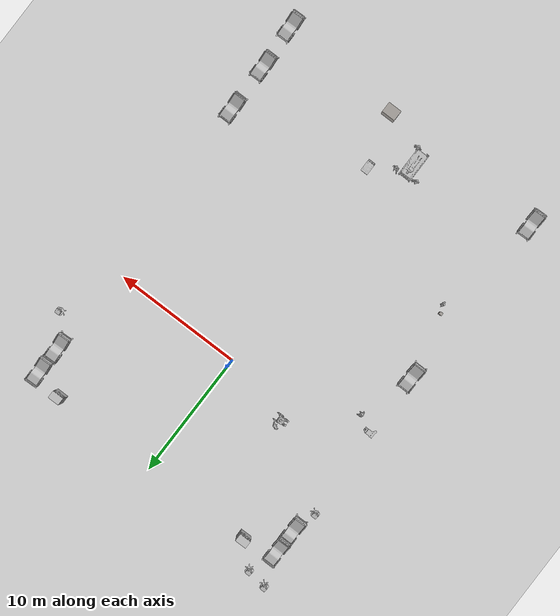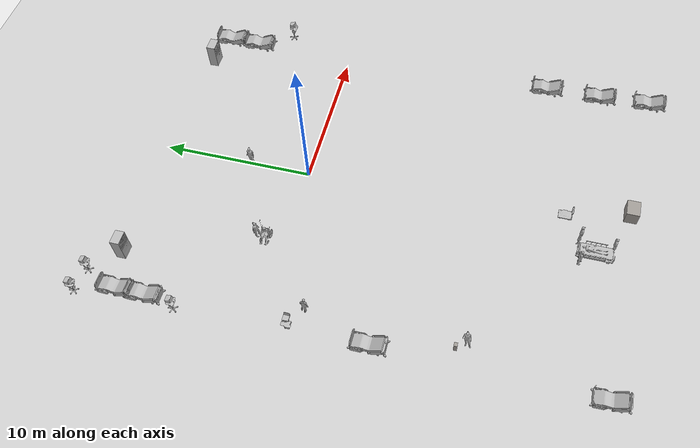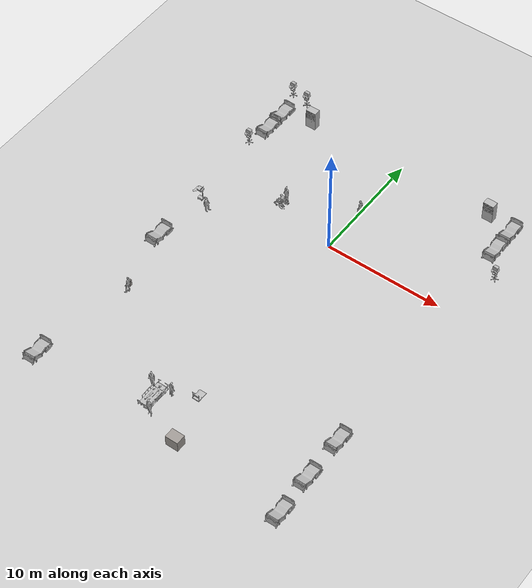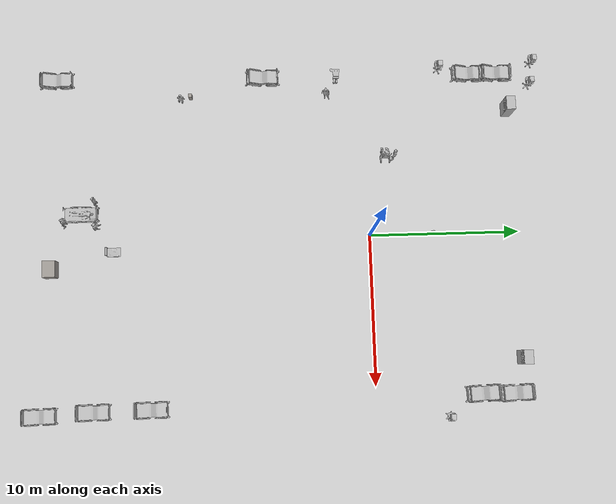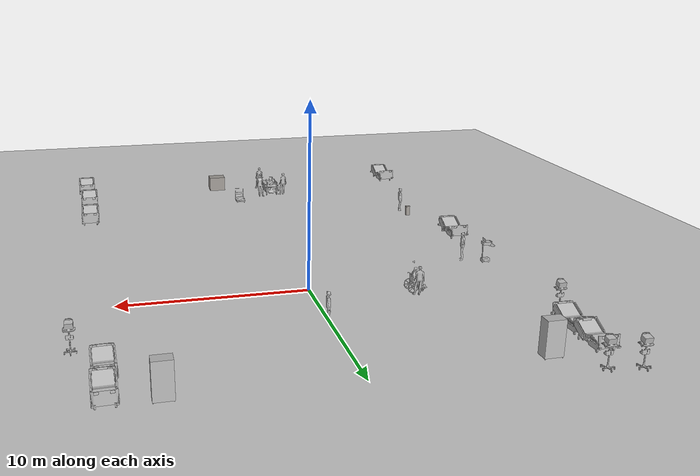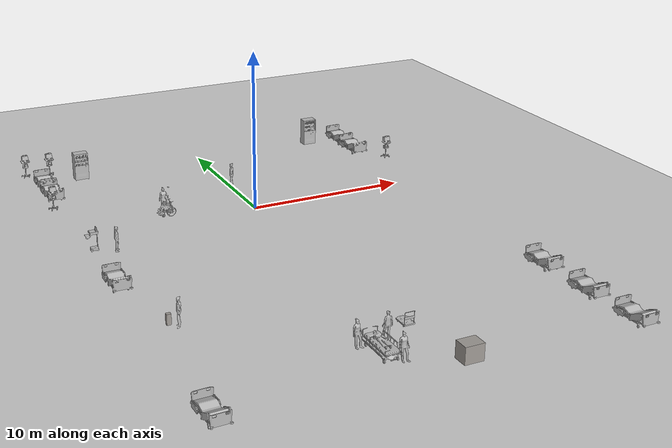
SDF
<sdf version="1.8">
 <world name="normal_hospital">
  <plugin filename="ignition-gazebo-physics-system" name="ignition::gazebo::systems::Physics"/>
  <plugin filename="ignition-gazebo-user-commands-system" name="ignition::gazebo::systems::UserCommands"/>
  <plugin filename="ignition-gazebo-scene-broadcaster-system" name="ignition::gazebo::systems::SceneBroadcaster"/>
  <plugin filename="ignition-gazebo-imu-system" name="ignition::gazebo::systems::Imu"/>
  <plugin filename="ignition-gazebo-magnetometer-system" name="ignition::gazebo::systems::Magnetometer"/>
  <plugin filename="ignition-gazebo-sensors-system" name="ignition::gazebo::systems::Sensors">
   <render_engine>ogre2</render_engine>
  </plugin>
  <gravity>0 0 -9.8</gravity>
  <physics default="0" name="default_physics" type="ode">
   <max_step_size>0.001</max_step_size>
   <real_time_factor>1</real_time_factor>
   <real_time_update_rate>1000</real_time_update_rate>
  </physics>
  <scene>
   <ambient>0.85 0.85 0.85 1</ambient>
   <background>0.55 0.55 0.55 1</background>
   <shadows>false</shadows>
  </scene>
  <include><uri>model://sun</uri></include>
  <include><uri>model://ground_plane</uri><pose>0 0 -0.1 0 -0 0</pose></include>
  <include>
   <uri>model://CGMClassic</uri>
   <name>CGMClassic_1</name>
   <static>true</static>
   <pose>11.1777 -18.4129 0 0 0 -3.13719</pose>
  </include>
  <include>
   <uri>model://CGMClassic</uri>
   <name>CGMClassic_2</name>
   <static>true</static>
   <pose>11.1179 -14.6493 0 0 0 -3.13599</pose>
  </include>
  <include>
   <uri>model://Scrubs</uri>
   <name>Scrubs_1</name>
   <static>true</static>
   <pose>-9.61916 -12.5112 0 0 0 -3.12353</pose>
  </include>
  <include>
   <uri>model://Scrubs</uri>
   <name>Scrubs_2</name>
   <static>true</static>
   <pose>0.054597 4.05849 0 0 -0 3.12413</pose>
  </include>
  <include>
   <uri>model://PatientWheelChair</uri>
   <name>PatientWheelChair_1</name>
   <static>true</static>
   <pose>-5.46091 1.23577 0 0 0 -1.54828</pose>
  </include>
  <include>
   <uri>model://Scrubs</uri>
   <name>Scrubs_3</name>
   <static>true</static>
   <pose>-5.38513 1.82526 0 0 0 -1.63757</pose>
  </include>
  <include>
   <uri>model://CGMClassic</uri>
   <name>CGMClassic_3</name>
   <static>true</static>
   <pose>-11.2304 -21.1134 0 0 0 -3.11834</pose>
  </include>
  <include>
   <uri>model://CGMClassic</uri>
   <name>CGMClassic_4</name>
   <static>true</static>
   <pose>-11.0878 -7.00992 0 0 -0 3.1351</pose>
  </include>
  <include>
   <uri>model://CGMClassic</uri>
   <name>CGMClassic_5</name>
   <static>true</static>
   <pose>-11.0106 8.9505 -0.008203 -0.035019 -0.000392 3.13388</pose>
  </include>
  <include>
   <uri>model://CGMClassic</uri>
   <name>CGMClassic_6</name>
   <static>true</static>
   <pose>-11.025 7.10335 0 -0.035021 1.8e-05 -3.13762</pose>
  </include>
  <include>
   <uri>model://TrolleyBedPatient</uri>
   <name>TrolleyBedPatient_1</name>
   <static>true</static>
   <pose>-1.83202 -19.2612 0 0 -0 0</pose>
  </include>
  <include>
   <uri>model://Scrubs</uri>
   <name>Scrubs_4</name>
   <static>true</static>
   <pose>-0.93616 -18.2252 0 0 -0 1.62572</pose>
  </include>
  <include>
   <uri>model://Scrubs</uri>
   <name>Scrubs_5</name>
   <static>true</static>
   <pose>-2.66657 -18.3733 0 -0.002221 -0.006608 -1.24025</pose>
  </include>
  <include>
   <uri>model://CGMClassic</uri>
   <name>CGMClassic_7</name>
   <static>true</static>
   <pose>10.6166 9.06291 -0.008203 -0.03501 0.000885 -3.11285</pose>
  </include>
  <include>
   <uri>model://CGMClassic</uri>
   <name>CGMClassic_8</name>
   <static>true</static>
   <pose>10.6006 6.90956 -0.008203 -0.035003 0.001133 -3.10576</pose>
  </include>
  <include>
   <uri>model://ParkingTrolleyMin</uri>
   <name>ParkingTrolleyMin_1</name>
   <static>true</static>
   <pose>0.715846 -17.1496 -0.000121 -1e-06 -0 0</pose>
  </include>
  <include>
   <uri>model://Scrubs</uri>
   <name>Scrubs_6</name>
   <static>true</static>
   <pose>-1.29468 -20.4093 0 0 0 -1.51066</pose>
  </include>
  <include>
   <uri>model://CGMClassic</uri>
   <name>CGMClassic_9</name>
   <static>true</static>
   <pose>11.3613 -21.8867 0 0 0 -3.12292</pose>
  </include>
  <include>
   <uri>model://XRayMachine</uri>
   <name>XRayMachine_1</name>
   <static>true</static>
   <pose>1.79424 -21.3329 0 0 -0 0</pose>
  </include>
  <include>
   <uri>model://BloodPressureMonitor</uri>
   <name>BloodPressureMonitor_1</name>
   <static>true</static>
   <pose>-9.96258 -11.9361 0 0 -0 0</pose>
  </include>
  <include>
   <uri>model://BMWCart</uri>
   <name>BMWCart_1</name>
   <static>true</static>
   <pose>-10.931 -1.9483 0 0 -0 0</pose>
  </include>
  <include>
   <uri>model://Scrubs</uri>
   <name>Scrubs_7</name>
   <static>true</static>
   <pose>-9.75875 -2.67552 0 0 -0 0</pose>
  </include>
  <include>
   <uri>model://BPCart</uri>
   <name>BPCart_1</name>
   <static>true</static>
   <pose>-10.1788 11.173 0.003446 1e-06 -0 0.003096</pose>
  </include>
  <include>
   <uri>model://BPCart</uri>
   <name>BPCart_2</name>
   <static>true</static>
   <pose>12.0072 4.64765 0 0 -0 0</pose>
  </include>
  <include>
   <uri>model://BPCart</uri>
   <name>BPCart_3</name>
   <static>true</static>
   <pose>-11.7236 11.4294 0 0 -0 0</pose>
  </include>
  <include>
   <uri>model://BPCart</uri>
   <name>BPCart_4</name>
   <static>true</static>
   <pose>-11.4703 5.05999 0.003446 1e-06 -0 0.003096</pose>
  </include>
  <include>
   <uri>model://VendingMachine</uri>
   <name>VendingMachine_1</name>
   <static>true</static>
   <pose>-8.45694 9.63064 0 0 -0 0</pose>
  </include>
  <include>
   <uri>model://VendingMachine</uri>
   <name>VendingMachine_2</name>
   <static>true</static>
   <pose>8.35378 9.64852 -3e-06 -6e-06 0 0</pose>
  </include>
  <model name="outside_ground_north">
   <static>true</static>
   <pose>0 36.25 0.165474 0 0 0</pose>
   <link name="link">
    <collision name="collision"><geometry><box><size>120.0 47.5 0.02</size></box></geometry></collision>
   </link>
  </model>
  <model name="outside_ground_south">
   <static>true</static>
   <pose>0 -36.25 0.165474 0 0 0</pose>
   <link name="link">
    <collision name="collision"><geometry><box><size>120.0 47.5 0.02</size></box></geometry></collision>
   </link>
  </model>
  <model name="outside_ground_east">
   <static>true</static>
   <pose>44.0 0 0.165474 0 0 0</pose>
   <link name="link">
    <collision name="collision"><geometry><box><size>32.0 25.0 0.02</size></box></geometry></collision>
   </link>
  </model>
  <model name="outside_ground_west">
   <static>true</static>
   <pose>-44.0 0 0.165474 0 0 0</pose>
   <link name="link">
    <collision name="collision"><geometry><box><size>32.0 25.0 0.02</size></box></geometry></collision>
   </link>
  </model>
 </world>
</sdf>

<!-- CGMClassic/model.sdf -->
<sdf version="1.6">
  <model name="CGMClassic">
   <static>true</static>
    <link name="body">
      <pose>0 0 0 0 0 0</pose>

      <visual name="visual">
        <geometry>
          <mesh>
            <uri>model://CGMClassic/meshes/CGMClassic.obj</uri>
            <scale>0.01 0.01 0.01</scale>
          </mesh>
        </geometry>
      </visual>

      <collision name="collision">
        <geometry>
          <mesh>
            <uri>model://CGMClassic/meshes/CGMClassic.obj</uri>
            <scale>0.01 0.01 0.01</scale>
          </mesh>
        </geometry>
      </collision>

    </link>
  </model>
</sdf>

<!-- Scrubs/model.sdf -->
<sdf version="1.6">
  <model name='Scrubs'>
   <static>true</static>
    <link name="body">
      <pose>0 0 0 0 0 0</pose>

      <visual name="visual">
        <geometry>
          <mesh>
            <uri>model://Scrubs/meshes/scrubs.obj</uri>
          </mesh>
        </geometry>
      </visual>

      <collision name="collision">
        <geometry>
          <mesh>
            <uri>model://Scrubs/meshes/Scrubs_Col.obj</uri>
          </mesh>
        </geometry>
      </collision>

    </link>
  </model>
</sdf>

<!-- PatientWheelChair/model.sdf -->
<sdf version="1.6">
  <model name="PatientWheelChair">
   <static>true</static>
    <link name="body">
      <pose>0 0 0 0 0 0</pose>

      <visual name="visual">
        <geometry>
          <mesh>
            <uri>model://PatientWheelChair/meshes/PatientWheelChair.obj</uri>
          </mesh>
        </geometry>
      </visual>

      <collision name="collision">
        <geometry>
          <mesh>
            <uri>model://PatientWheelChair/meshes/PatientWheelChair_Col.obj</uri>
          </mesh>
        </geometry>
      </collision>

    </link>
  </model>
</sdf>

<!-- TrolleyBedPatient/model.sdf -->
<sdf version="1.6">
  <model name="TrolleyBedPatient">
   <static>true</static>
    <link name="body">
      <pose>0 0 0 0 0 0</pose>

      <visual name="visual">
        <geometry>
          <mesh>
            <uri>model://TrolleyBedPatient/meshes/TrolleyBedPatient.obj</uri>
          </mesh>
        </geometry>
      </visual>

      <collision name="collision">
        <geometry>
          <mesh>
            <uri>model://TrolleyBedPatient/meshes/TrolleyBedPatient.obj</uri>
          </mesh>
        </geometry>
      </collision>

    </link>
  </model>
</sdf>

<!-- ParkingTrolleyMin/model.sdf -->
<sdf version="1.6">
  <model name="ParkingTrolleyMin">
    <link name="body">
      <pose>0 0 0 0 0 0</pose>

        <visual name="visual">
          <pose>0 0 0 0 0 0</pose>
          <geometry>
            <mesh><uri>model://ParkingTrolleyMin/meshes/trolleymin.obj</uri></mesh>
          </geometry>
        </visual>

        <collision name="collision">
          <pose>0 0 0 0 0 0</pose>
          <geometry>
            <mesh><uri>model://ParkingTrolleyMin/meshes/trolleymin.obj</uri></mesh>
          </geometry>
        </collision>

    </link>
  </model>
</sdf>

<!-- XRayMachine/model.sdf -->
<sdf version="1.6">
  <model name="XRayMachine">
    <static>true</static>
    <link name="link">
      <collision name="col">
        <geometry>
          <box>
            <size>1.1 0.85 1.65</size>
          </box>
        </geometry>
      </collision>
      <visual name="vis">
        <geometry>
          <box>
            <size>1.1 0.85 1.65</size>
          </box>
        </geometry>
        <material>
          <ambient>0.62 0.6 0.58 1</ambient>
          <diffuse>0.62 0.6 0.58 1</diffuse>
        </material>
      </visual>
    </link>
  </model>
</sdf>

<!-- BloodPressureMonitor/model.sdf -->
<sdf version="1.6">
  <model name="BloodPressureMonitor">
    <static>true</static>
    <link name="link">
      <collision name="col">
        <geometry>
          <box>
            <size>0.25 0.22 0.95</size>
          </box>
        </geometry>
      </collision>
      <visual name="vis">
        <geometry>
          <box>
            <size>0.25 0.22 0.95</size>
          </box>
        </geometry>
        <material>
          <ambient>0.62 0.6 0.58 1</ambient>
          <diffuse>0.62 0.6 0.58 1</diffuse>
        </material>
      </visual>
    </link>
  </model>
</sdf>

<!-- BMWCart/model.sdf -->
<sdf version="1.6">
  <model name='BMWCart'>
    <link name="body">
      <pose>0 0 0 0 0 0</pose>

      <visual name="visual">
        <geometry>
          <mesh>
            <uri>model://BMWCart/meshes/Cart_BMW.obj</uri>
          </mesh>
        </geometry>
      </visual>

      <collision name="collision">
        <geometry>
          <mesh>
            <uri>model://BMWCart/meshes/Cart_BMW_Col.obj</uri>
          </mesh>
        </geometry>
      </collision>

    </link>
  </model>
</sdf>

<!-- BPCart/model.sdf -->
<sdf version="1.6">
  <model name='BPCart'>
    <link name="body">
      <pose>0 0 0 0 0 0</pose>

      <visual name="visual">
        <geometry>
          <mesh>
            <uri>model://BPCart/meshes/Cart_BP.obj</uri>
          </mesh>
        </geometry>
      </visual>

      <collision name="collision">
        <geometry>
          <mesh>
            <uri>model://BPCart/meshes/Cart_BP_Col.obj</uri>
          </mesh>
        </geometry>
      </collision>

    </link>
  </model>
</sdf>

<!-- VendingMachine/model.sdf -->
<sdf version="1.6">
  <model name="VendingMachine">
    <link name="body">
      <pose>0 0 0 0 0 0</pose>

      <visual name="visual">
        <geometry>
          <mesh>
            <uri>model://VendingMachine/meshes/vend.obj</uri>
          </mesh>
        </geometry>
      </visual>

      <collision name="collision">
        <geometry>
          <mesh>
            <uri>model://VendingMachine/meshes/vend.obj</uri>
          </mesh>
        </geometry>
      </collision>

    </link>
  </model>
</sdf>
